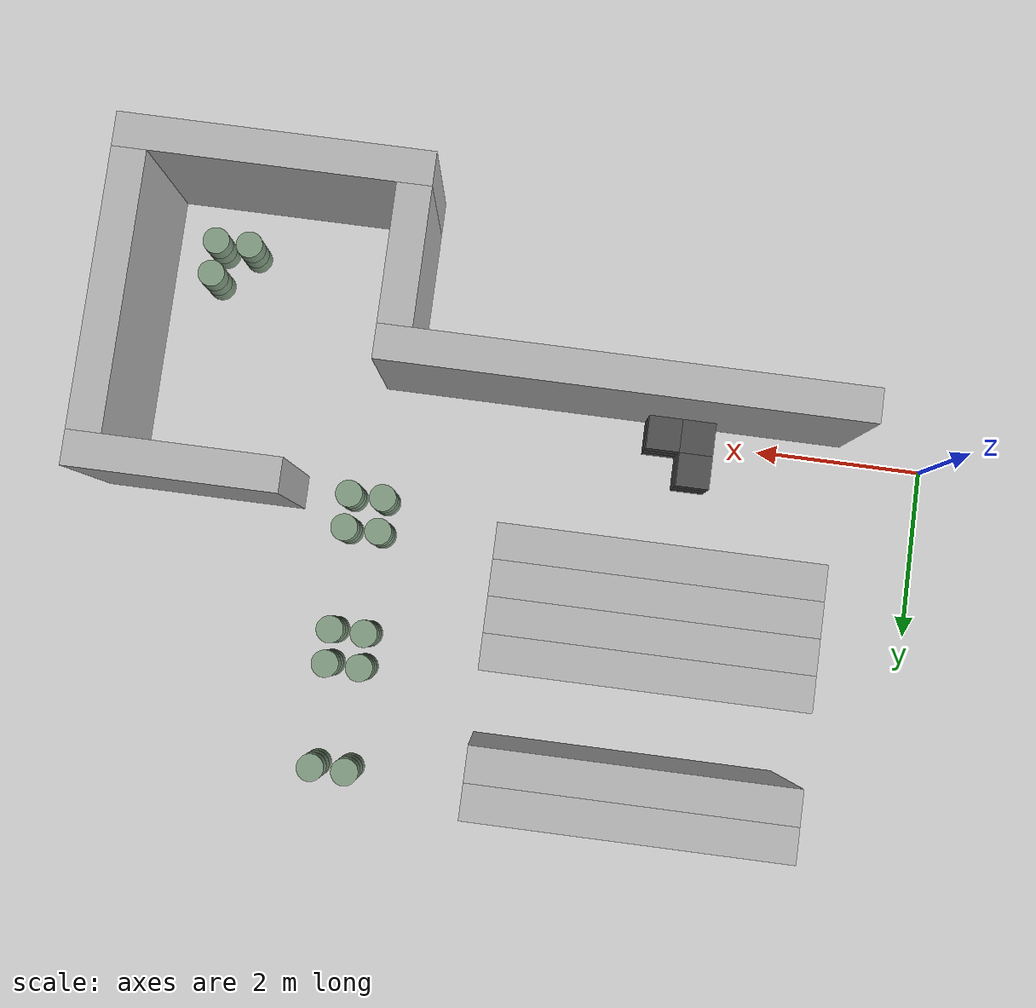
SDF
<sdf version="1.6">
 <world name="default">
  <include><uri>model://ground_plane</uri></include>
  <model name="wall_4">
   <pose frame="sim_world">6.4 -1.4 1.0 0 0 0</pose>
   <static>True</static>
   <link name="wall_4_link">
    <inertial>
     <mass>100</mass>
     <inertia>
      <ixx>0.166667</ixx>
      <ixy>0</ixy>
      <ixz>0</ixz>
      <iyy>0.166667</iyy>
      <iyz>0</iyz>
      <izz>0.166667</izz>
     </inertia>
    </inertial>
    <collision name="wall_4_collision">
     <geometry><box><size>0.4 1.6 2.0</size></box></geometry>
     <max_contacts>100</max_contacts>
    </collision>
    <visual name="wall_4_visual">
     <geometry><box><size>0.4 1.6 2.0</size></box></geometry>
     <material><ambient>0.7 0.7 0.7 1</ambient><diffuse>0.7 0.7 0.7 1</diffuse></material>
    </visual>
   </link>
  </model>
  <model name="wall_6">
   <pose frame="sim_world">9.6 -0.6 1.0 0 0 0</pose>
   <static>True</static>
   <link name="wall_6_link">
    <inertial>
     <mass>100</mass>
     <inertia>
      <ixx>0.166667</ixx>
      <ixy>0</ixy>
      <ixz>0</ixz>
      <iyy>0.166667</iyy>
      <iyz>0</iyz>
      <izz>0.166667</izz>
     </inertia>
    </inertial>
    <collision name="wall_6_collision">
     <geometry><box><size>0.4 3.2 2.0</size></box></geometry>
     <max_contacts>100</max_contacts>
    </collision>
    <visual name="wall_6_visual">
     <geometry><box><size>0.4 3.2 2.0</size></box></geometry>
     <material><ambient>0.7 0.7 0.7 1</ambient><diffuse>0.7 0.7 0.7 1</diffuse></material>
    </visual>
   </link>
  </model>
  <model name="wall_8">
   <pose frame="sim_world">8.0 -2.4 1.0 0 0 0</pose>
   <static>True</static>
   <link name="wall_8_link">
    <inertial>
     <mass>100</mass>
     <inertia>
      <ixx>0.166667</ixx>
      <ixy>0</ixy>
      <ixz>0</ixz>
      <iyy>0.166667</iyy>
      <iyz>0</iyz>
      <izz>0.166667</izz>
     </inertia>
    </inertial>
    <collision name="wall_8_collision">
     <geometry><box><size>3.6 0.4 2.0</size></box></geometry>
     <max_contacts>100</max_contacts>
    </collision>
    <visual name="wall_8_visual">
     <geometry><box><size>3.6 0.4 2.0</size></box></geometry>
     <material><ambient>0.7 0.7 0.7 1</ambient><diffuse>0.7 0.7 0.7 1</diffuse></material>
    </visual>
   </link>
  </model>
  <model name="wall_9">
   <pose frame="sim_world">3.8 -0.4 1.0 0 0 0</pose>
   <static>True</static>
   <link name="wall_9_link">
    <inertial>
     <mass>100</mass>
     <inertia>
      <ixx>0.166667</ixx>
      <ixy>0</ixy>
      <ixz>0</ixz>
      <iyy>0.166667</iyy>
      <iyz>0</iyz>
      <izz>0.166667</izz>
     </inertia>
    </inertial>
    <collision name="wall_9_collision">
     <geometry><box><size>5.6000000000000005 0.4 2.0</size></box></geometry>
     <max_contacts>100</max_contacts>
    </collision>
    <visual name="wall_9_visual">
     <geometry><box><size>5.6000000000000005 0.4 2.0</size></box></geometry>
     <material><ambient>0.7 0.7 0.7 1</ambient><diffuse>0.7 0.7 0.7 1</diffuse></material>
    </visual>
   </link>
  </model>
  <model name="wall_10">
   <pose frame="sim_world">8.6 1.2 1.0 0 0 0</pose>
   <static>True</static>
   <link name="wall_10_link">
    <inertial>
     <mass>100</mass>
     <inertia>
      <ixx>0.166667</ixx>
      <ixy>0</ixy>
      <ixz>0</ixz>
      <iyy>0.166667</iyy>
      <iyz>0</iyz>
      <izz>0.166667</izz>
     </inertia>
    </inertial>
    <collision name="wall_10_collision">
     <geometry><box><size>2.4000000000000004 0.4 2.0</size></box></geometry>
     <max_contacts>100</max_contacts>
    </collision>
    <visual name="wall_10_visual">
     <geometry><box><size>2.4000000000000004 0.4 2.0</size></box></geometry>
     <material><ambient>0.7 0.7 0.7 1</ambient><diffuse>0.7 0.7 0.7 1</diffuse></material>
    </visual>
   </link>
  </model>
  <model name="wall_11">
   <pose frame="sim_world">3.2 1.6 1.0 0 0 0</pose>
   <static>True</static>
   <link name="wall_11_link">
    <inertial>
     <mass>100</mass>
     <inertia>
      <ixx>0.166667</ixx>
      <ixy>0</ixy>
      <ixz>0</ixz>
      <iyy>0.166667</iyy>
      <iyz>0</iyz>
      <izz>0.166667</izz>
     </inertia>
    </inertial>
    <collision name="wall_11_collision">
     <geometry><box><size>3.6 0.4 2.0</size></box></geometry>
     <max_contacts>100</max_contacts>
    </collision>
    <visual name="wall_11_visual">
     <geometry><box><size>3.6 0.4 2.0</size></box></geometry>
     <material><ambient>0.7 0.7 0.7 1</ambient><diffuse>0.7 0.7 0.7 1</diffuse></material>
    </visual>
   </link>
  </model>
  <model name="wall_12">
   <pose frame="sim_world">3.2 2.0 1.0 0 0 0</pose>
   <static>True</static>
   <link name="wall_12_link">
    <inertial>
     <mass>100</mass>
     <inertia>
      <ixx>0.166667</ixx>
      <ixy>0</ixy>
      <ixz>0</ixz>
      <iyy>0.166667</iyy>
      <iyz>0</iyz>
      <izz>0.166667</izz>
     </inertia>
    </inertial>
    <collision name="wall_12_collision">
     <geometry><box><size>3.6 0.4 2.0</size></box></geometry>
     <max_contacts>100</max_contacts>
    </collision>
    <visual name="wall_12_visual">
     <geometry><box><size>3.6 0.4 2.0</size></box></geometry>
     <material><ambient>0.7 0.7 0.7 1</ambient><diffuse>0.7 0.7 0.7 1</diffuse></material>
    </visual>
   </link>
  </model>
  <model name="wall_13">
   <pose frame="sim_world">3.2 2.4 1.0 0 0 0</pose>
   <static>True</static>
   <link name="wall_13_link">
    <inertial>
     <mass>100</mass>
     <inertia>
      <ixx>0.166667</ixx>
      <ixy>0</ixy>
      <ixz>0</ixz>
      <iyy>0.166667</iyy>
      <iyz>0</iyz>
      <izz>0.166667</izz>
     </inertia>
    </inertial>
    <collision name="wall_13_collision">
     <geometry><box><size>3.6 0.4 2.0</size></box></geometry>
     <max_contacts>100</max_contacts>
    </collision>
    <visual name="wall_13_visual">
     <geometry><box><size>3.6 0.4 2.0</size></box></geometry>
     <material><ambient>0.7 0.7 0.7 1</ambient><diffuse>0.7 0.7 0.7 1</diffuse></material>
    </visual>
   </link>
  </model>
  <model name="wall_14">
   <pose frame="sim_world">3.2 2.8 1.0 0 0 0</pose>
   <static>True</static>
   <link name="wall_14_link">
    <inertial>
     <mass>100</mass>
     <inertia>
      <ixx>0.166667</ixx>
      <ixy>0</ixy>
      <ixz>0</ixz>
      <iyy>0.166667</iyy>
      <iyz>0</iyz>
      <izz>0.166667</izz>
     </inertia>
    </inertial>
    <collision name="wall_14_collision">
     <geometry><box><size>3.6 0.4 2.0</size></box></geometry>
     <max_contacts>100</max_contacts>
    </collision>
    <visual name="wall_14_visual">
     <geometry><box><size>3.6 0.4 2.0</size></box></geometry>
     <material><ambient>0.7 0.7 0.7 1</ambient><diffuse>0.7 0.7 0.7 1</diffuse></material>
    </visual>
   </link>
  </model>
  <model name="wall_15">
   <pose frame="sim_world">3.2 4.0 1.0 0 0 0</pose>
   <static>True</static>
   <link name="wall_15_link">
    <inertial>
     <mass>100</mass>
     <inertia>
      <ixx>0.166667</ixx>
      <ixy>0</ixy>
      <ixz>0</ixz>
      <iyy>0.166667</iyy>
      <iyz>0</iyz>
      <izz>0.166667</izz>
     </inertia>
    </inertial>
    <collision name="wall_15_collision">
     <geometry><box><size>3.6 0.4 2.0</size></box></geometry>
     <max_contacts>100</max_contacts>
    </collision>
    <visual name="wall_15_visual">
     <geometry><box><size>3.6 0.4 2.0</size></box></geometry>
     <material><ambient>0.7 0.7 0.7 1</ambient><diffuse>0.7 0.7 0.7 1</diffuse></material>
    </visual>
   </link>
  </model>
  <model name="wall_16">
   <pose frame="sim_world">3.2 4.4 1.0 0 0 0</pose>
   <static>True</static>
   <link name="wall_16_link">
    <inertial>
     <mass>100</mass>
     <inertia>
      <ixx>0.166667</ixx>
      <ixy>0</ixy>
      <ixz>0</ixz>
      <iyy>0.166667</iyy>
      <iyz>0</iyz>
      <izz>0.166667</izz>
     </inertia>
    </inertial>
    <collision name="wall_16_collision">
     <geometry><box><size>3.6 0.4 2.0</size></box></geometry>
     <max_contacts>100</max_contacts>
    </collision>
    <visual name="wall_16_visual">
     <geometry><box><size>3.6 0.4 2.0</size></box></geometry>
     <material><ambient>0.7 0.7 0.7 1</ambient><diffuse>0.7 0.7 0.7 1</diffuse></material>
    </visual>
   </link>
  </model>
  <model name="box_105">
   <pose frame="sim_world">2.8 0.0 0.1 0 -0 0</pose>
   <static>True</static>
   <link name="box_105_link">
    <inertial>
     <mass>100</mass>
     <inertia>
      <ixx>0.166667</ixx>
      <ixy>0</ixy>
      <ixz>0</ixz>
      <iyy>0.166667</iyy>
      <iyz>0</iyz>
      <izz>0.166667</izz>
     </inertia>
    </inertial>
    <collision name="box_105_collision">
     <geometry><box><size>0.4 0.4 0.2</size></box></geometry>
     <max_contacts>100</max_contacts>
    </collision>
    <visual name="box_105_visual">
     <geometry><box><size>0.4 0.4 0.2</size></box></geometry>
     <material><ambient>0.3 0.3 0.3 1</ambient><diffuse>0.3 0.3 0.3 1</diffuse></material>
    </visual>
   </link>
  </model>
  <model name="box_106">
   <pose frame="sim_world">2.8 0.0 0.3 0 -0 0</pose>
   <static>True</static>
   <link name="box_106_link">
    <inertial>
     <mass>100</mass>
     <inertia>
      <ixx>0.166667</ixx>
      <ixy>0</ixy>
      <ixz>0</ixz>
      <iyy>0.166667</iyy>
      <iyz>0</iyz>
      <izz>0.166667</izz>
     </inertia>
    </inertial>
    <collision name="box_106_collision">
     <geometry><box><size>0.4 0.4 0.2</size></box></geometry>
     <max_contacts>100</max_contacts>
    </collision>
    <visual name="box_106_visual">
     <geometry><box><size>0.4 0.4 0.2</size></box></geometry>
     <material><ambient>0.3 0.3 0.3 1</ambient><diffuse>0.3 0.3 0.3 1</diffuse></material>
    </visual>
   </link>
  </model>
  <model name="box_107">
   <pose frame="sim_world">2.8 0.0 0.5 0 -0 0</pose>
   <static>True</static>
   <link name="box_107_link">
    <inertial>
     <mass>100</mass>
     <inertia>
      <ixx>0.166667</ixx>
      <ixy>0</ixy>
      <ixz>0</ixz>
      <iyy>0.166667</iyy>
      <iyz>0</iyz>
      <izz>0.166667</izz>
     </inertia>
    </inertial>
    <collision name="box_107_collision">
     <geometry><box><size>0.4 0.4 0.2</size></box></geometry>
     <max_contacts>100</max_contacts>
    </collision>
    <visual name="box_107_visual">
     <geometry><box><size>0.4 0.4 0.2</size></box></geometry>
     <material><ambient>0.3 0.3 0.3 1</ambient><diffuse>0.3 0.3 0.3 1</diffuse></material>
    </visual>
   </link>
  </model>
  <model name="box_108">
   <pose frame="sim_world">2.8 0.4 0.1 0 -0 0</pose>
   <static>True</static>
   <link name="box_108_link">
    <inertial>
     <mass>100</mass>
     <inertia>
      <ixx>0.166667</ixx>
      <ixy>0</ixy>
      <ixz>0</ixz>
      <iyy>0.166667</iyy>
      <iyz>0</iyz>
      <izz>0.166667</izz>
     </inertia>
    </inertial>
    <collision name="box_108_collision">
     <geometry><box><size>0.4 0.4 0.2</size></box></geometry>
     <max_contacts>100</max_contacts>
    </collision>
    <visual name="box_108_visual">
     <geometry><box><size>0.4 0.4 0.2</size></box></geometry>
     <material><ambient>0.3 0.3 0.3 1</ambient><diffuse>0.3 0.3 0.3 1</diffuse></material>
    </visual>
   </link>
  </model>
  <model name="box_109">
   <pose frame="sim_world">2.8 0.4 0.3 0 -0 0</pose>
   <static>True</static>
   <link name="box_109_link">
    <inertial>
     <mass>100</mass>
     <inertia>
      <ixx>0.166667</ixx>
      <ixy>0</ixy>
      <ixz>0</ixz>
      <iyy>0.166667</iyy>
      <iyz>0</iyz>
      <izz>0.166667</izz>
     </inertia>
    </inertial>
    <collision name="box_109_collision">
     <geometry><box><size>0.4 0.4 0.2</size></box></geometry>
     <max_contacts>100</max_contacts>
    </collision>
    <visual name="box_109_visual">
     <geometry><box><size>0.4 0.4 0.2</size></box></geometry>
     <material><ambient>0.3 0.3 0.3 1</ambient><diffuse>0.3 0.3 0.3 1</diffuse></material>
    </visual>
   </link>
  </model>
  <model name="box_110">
   <pose frame="sim_world">2.8 0.4 0.5 0 -0 0</pose>
   <static>True</static>
   <link name="box_110_link">
    <inertial>
     <mass>100</mass>
     <inertia>
      <ixx>0.166667</ixx>
      <ixy>0</ixy>
      <ixz>0</ixz>
      <iyy>0.166667</iyy>
      <iyz>0</iyz>
      <izz>0.166667</izz>
     </inertia>
    </inertial>
    <collision name="box_110_collision">
     <geometry><box><size>0.4 0.4 0.2</size></box></geometry>
     <max_contacts>100</max_contacts>
    </collision>
    <visual name="box_110_visual">
     <geometry><box><size>0.4 0.4 0.2</size></box></geometry>
     <material><ambient>0.3 0.3 0.3 1</ambient><diffuse>0.3 0.3 0.3 1</diffuse></material>
    </visual>
   </link>
  </model>
  <model name="box_123">
   <pose frame="sim_world">3.2 0.0 0.1 0 -0 0</pose>
   <static>True</static>
   <link name="box_123_link">
    <inertial>
     <mass>100</mass>
     <inertia>
      <ixx>0.166667</ixx>
      <ixy>0</ixy>
      <ixz>0</ixz>
      <iyy>0.166667</iyy>
      <iyz>0</iyz>
      <izz>0.166667</izz>
     </inertia>
    </inertial>
    <collision name="box_123_collision">
     <geometry><box><size>0.4 0.4 0.2</size></box></geometry>
     <max_contacts>100</max_contacts>
    </collision>
    <visual name="box_123_visual">
     <geometry><box><size>0.4 0.4 0.2</size></box></geometry>
     <material><ambient>0.3 0.3 0.3 1</ambient><diffuse>0.3 0.3 0.3 1</diffuse></material>
    </visual>
   </link>
  </model>
  <model name="box_124">
   <pose frame="sim_world">3.2 0.0 0.3 0 -0 0</pose>
   <static>True</static>
   <link name="box_124_link">
    <inertial>
     <mass>100</mass>
     <inertia>
      <ixx>0.166667</ixx>
      <ixy>0</ixy>
      <ixz>0</ixz>
      <iyy>0.166667</iyy>
      <iyz>0</iyz>
      <izz>0.166667</izz>
     </inertia>
    </inertial>
    <collision name="box_124_collision">
     <geometry><box><size>0.4 0.4 0.2</size></box></geometry>
     <max_contacts>100</max_contacts>
    </collision>
    <visual name="box_124_visual">
     <geometry><box><size>0.4 0.4 0.2</size></box></geometry>
     <material><ambient>0.3 0.3 0.3 1</ambient><diffuse>0.3 0.3 0.3 1</diffuse></material>
    </visual>
   </link>
  </model>
  <model name="box_125">
   <pose frame="sim_world">3.2 0.0 0.5 0 -0 0</pose>
   <static>True</static>
   <link name="box_125_link">
    <inertial>
     <mass>100</mass>
     <inertia>
      <ixx>0.166667</ixx>
      <ixy>0</ixy>
      <ixz>0</ixz>
      <iyy>0.166667</iyy>
      <iyz>0</iyz>
      <izz>0.166667</izz>
     </inertia>
    </inertial>
    <collision name="box_125_collision">
     <geometry><box><size>0.4 0.4 0.2</size></box></geometry>
     <max_contacts>100</max_contacts>
    </collision>
    <visual name="box_125_visual">
     <geometry><box><size>0.4 0.4 0.2</size></box></geometry>
     <material><ambient>0.3 0.3 0.3 1</ambient><diffuse>0.3 0.3 0.3 1</diffuse></material>
    </visual>
   </link>
  </model>
  <model name="cylinder_6">
   <pose frame="sim_world">6.4 1.2 0.12 0 -0 0</pose>
   <static>True</static>
   <link name="cylinder_6_link">
    <inertial>
     <mass>100</mass>
     <inertia><ixx>0.145833</ixx><ixy>0</ixy><ixz>0</ixz><iyy>0.145833</iyy><iyz>0</iyz><izz>0.125</izz></inertia>
    </inertial>
    <collision name="cylinder_6_collision">
     <geometry><cylinder><length>0.24</length><radius>0.16</radius></cylinder></geometry>
     <max_contacts>100</max_contacts>
    </collision>
    <visual name="cylinder_6_visual">
     <geometry><cylinder><length>0.24</length><radius>0.16</radius></cylinder></geometry>
     <material><ambient>0.5 0.6 0.5 1</ambient><diffuse>0.5 0.6 0.5 1</diffuse></material>
    </visual>
   </link>
  </model>
  <model name="cylinder_7">
   <pose frame="sim_world">6.4 1.2 0.36 0 -0 0</pose>
   <static>True</static>
   <link name="cylinder_7_link">
    <inertial>
     <mass>100</mass>
     <inertia><ixx>0.145833</ixx><ixy>0</ixy><ixz>0</ixz><iyy>0.145833</iyy><iyz>0</iyz><izz>0.125</izz></inertia>
    </inertial>
    <collision name="cylinder_7_collision">
     <geometry><cylinder><length>0.24</length><radius>0.16</radius></cylinder></geometry>
     <max_contacts>100</max_contacts>
    </collision>
    <visual name="cylinder_7_visual">
     <geometry><cylinder><length>0.24</length><radius>0.16</radius></cylinder></geometry>
     <material><ambient>0.5 0.6 0.5 1</ambient><diffuse>0.5 0.6 0.5 1</diffuse></material>
    </visual>
   </link>
  </model>
  <model name="cylinder_8">
   <pose frame="sim_world">6.4 1.2 0.6 0 -0 0</pose>
   <static>True</static>
   <link name="cylinder_8_link">
    <inertial>
     <mass>100</mass>
     <inertia><ixx>0.145833</ixx><ixy>0</ixy><ixz>0</ixz><iyy>0.145833</iyy><iyz>0</iyz><izz>0.125</izz></inertia>
    </inertial>
    <collision name="cylinder_8_collision">
     <geometry><cylinder><length>0.24</length><radius>0.16</radius></cylinder></geometry>
     <max_contacts>100</max_contacts>
    </collision>
    <visual name="cylinder_8_visual">
     <geometry><cylinder><length>0.24</length><radius>0.16</radius></cylinder></geometry>
     <material><ambient>0.5 0.6 0.5 1</ambient><diffuse>0.5 0.6 0.5 1</diffuse></material>
    </visual>
   </link>
  </model>
  <model name="cylinder_9">
   <pose frame="sim_world">6.4 1.6 0.12 0 -0 0</pose>
   <static>True</static>
   <link name="cylinder_9_link">
    <inertial>
     <mass>100</mass>
     <inertia><ixx>0.145833</ixx><ixy>0</ixy><ixz>0</ixz><iyy>0.145833</iyy><iyz>0</iyz><izz>0.125</izz></inertia>
    </inertial>
    <collision name="cylinder_9_collision">
     <geometry><cylinder><length>0.24</length><radius>0.16</radius></cylinder></geometry>
     <max_contacts>100</max_contacts>
    </collision>
    <visual name="cylinder_9_visual">
     <geometry><cylinder><length>0.24</length><radius>0.16</radius></cylinder></geometry>
     <material><ambient>0.5 0.6 0.5 1</ambient><diffuse>0.5 0.6 0.5 1</diffuse></material>
    </visual>
   </link>
  </model>
  <model name="cylinder_10">
   <pose frame="sim_world">6.4 1.6 0.36 0 -0 0</pose>
   <static>True</static>
   <link name="cylinder_10_link">
    <inertial>
     <mass>100</mass>
     <inertia><ixx>0.145833</ixx><ixy>0</ixy><ixz>0</ixz><iyy>0.145833</iyy><iyz>0</iyz><izz>0.125</izz></inertia>
    </inertial>
    <collision name="cylinder_10_collision">
     <geometry><cylinder><length>0.24</length><radius>0.16</radius></cylinder></geometry>
     <max_contacts>100</max_contacts>
    </collision>
    <visual name="cylinder_10_visual">
     <geometry><cylinder><length>0.24</length><radius>0.16</radius></cylinder></geometry>
     <material><ambient>0.5 0.6 0.5 1</ambient><diffuse>0.5 0.6 0.5 1</diffuse></material>
    </visual>
   </link>
  </model>
  <model name="cylinder_11">
   <pose frame="sim_world">6.4 1.6 0.6 0 -0 0</pose>
   <static>True</static>
   <link name="cylinder_11_link">
    <inertial>
     <mass>100</mass>
     <inertia><ixx>0.145833</ixx><ixy>0</ixy><ixz>0</ixz><iyy>0.145833</iyy><iyz>0</iyz><izz>0.125</izz></inertia>
    </inertial>
    <collision name="cylinder_11_collision">
     <geometry><cylinder><length>0.24</length><radius>0.16</radius></cylinder></geometry>
     <max_contacts>100</max_contacts>
    </collision>
    <visual name="cylinder_11_visual">
     <geometry><cylinder><length>0.24</length><radius>0.16</radius></cylinder></geometry>
     <material><ambient>0.5 0.6 0.5 1</ambient><diffuse>0.5 0.6 0.5 1</diffuse></material>
    </visual>
   </link>
  </model>
  <model name="cylinder_12">
   <pose frame="sim_world">6.4 2.8 0.12 0 -0 0</pose>
   <static>True</static>
   <link name="cylinder_12_link">
    <inertial>
     <mass>100</mass>
     <inertia><ixx>0.145833</ixx><ixy>0</ixy><ixz>0</ixz><iyy>0.145833</iyy><iyz>0</iyz><izz>0.125</izz></inertia>
    </inertial>
    <collision name="cylinder_12_collision">
     <geometry><cylinder><length>0.24</length><radius>0.16</radius></cylinder></geometry>
     <max_contacts>100</max_contacts>
    </collision>
    <visual name="cylinder_12_visual">
     <geometry><cylinder><length>0.24</length><radius>0.16</radius></cylinder></geometry>
     <material><ambient>0.5 0.6 0.5 1</ambient><diffuse>0.5 0.6 0.5 1</diffuse></material>
    </visual>
   </link>
  </model>
  <model name="cylinder_13">
   <pose frame="sim_world">6.4 2.8 0.36 0 -0 0</pose>
   <static>True</static>
   <link name="cylinder_13_link">
    <inertial>
     <mass>100</mass>
     <inertia><ixx>0.145833</ixx><ixy>0</ixy><ixz>0</ixz><iyy>0.145833</iyy><iyz>0</iyz><izz>0.125</izz></inertia>
    </inertial>
    <collision name="cylinder_13_collision">
     <geometry><cylinder><length>0.24</length><radius>0.16</radius></cylinder></geometry>
     <max_contacts>100</max_contacts>
    </collision>
    <visual name="cylinder_13_visual">
     <geometry><cylinder><length>0.24</length><radius>0.16</radius></cylinder></geometry>
     <material><ambient>0.5 0.6 0.5 1</ambient><diffuse>0.5 0.6 0.5 1</diffuse></material>
    </visual>
   </link>
  </model>
  <model name="cylinder_14">
   <pose frame="sim_world">6.4 2.8 0.6 0 -0 0</pose>
   <static>True</static>
   <link name="cylinder_14_link">
    <inertial>
     <mass>100</mass>
     <inertia><ixx>0.145833</ixx><ixy>0</ixy><ixz>0</ixz><iyy>0.145833</iyy><iyz>0</iyz><izz>0.125</izz></inertia>
    </inertial>
    <collision name="cylinder_14_collision">
     <geometry><cylinder><length>0.24</length><radius>0.16</radius></cylinder></geometry>
     <max_contacts>100</max_contacts>
    </collision>
    <visual name="cylinder_14_visual">
     <geometry><cylinder><length>0.24</length><radius>0.16</radius></cylinder></geometry>
     <material><ambient>0.5 0.6 0.5 1</ambient><diffuse>0.5 0.6 0.5 1</diffuse></material>
    </visual>
   </link>
  </model>
  <model name="cylinder_15">
   <pose frame="sim_world">6.4 3.2 0.12 0 -0 0</pose>
   <static>True</static>
   <link name="cylinder_15_link">
    <inertial>
     <mass>100</mass>
     <inertia><ixx>0.145833</ixx><ixy>0</ixy><ixz>0</ixz><iyy>0.145833</iyy><iyz>0</iyz><izz>0.125</izz></inertia>
    </inertial>
    <collision name="cylinder_15_collision">
     <geometry><cylinder><length>0.24</length><radius>0.16</radius></cylinder></geometry>
     <max_contacts>100</max_contacts>
    </collision>
    <visual name="cylinder_15_visual">
     <geometry><cylinder><length>0.24</length><radius>0.16</radius></cylinder></geometry>
     <material><ambient>0.5 0.6 0.5 1</ambient><diffuse>0.5 0.6 0.5 1</diffuse></material>
    </visual>
   </link>
  </model>
  <model name="cylinder_16">
   <pose frame="sim_world">6.4 3.2 0.36 0 -0 0</pose>
   <static>True</static>
   <link name="cylinder_16_link">
    <inertial>
     <mass>100</mass>
     <inertia><ixx>0.145833</ixx><ixy>0</ixy><ixz>0</ixz><iyy>0.145833</iyy><iyz>0</iyz><izz>0.125</izz></inertia>
    </inertial>
    <collision name="cylinder_16_collision">
     <geometry><cylinder><length>0.24</length><radius>0.16</radius></cylinder></geometry>
     <max_contacts>100</max_contacts>
    </collision>
    <visual name="cylinder_16_visual">
     <geometry><cylinder><length>0.24</length><radius>0.16</radius></cylinder></geometry>
     <material><ambient>0.5 0.6 0.5 1</ambient><diffuse>0.5 0.6 0.5 1</diffuse></material>
    </visual>
   </link>
  </model>
  <model name="cylinder_17">
   <pose frame="sim_world">6.4 3.2 0.6 0 -0 0</pose>
   <static>True</static>
   <link name="cylinder_17_link">
    <inertial>
     <mass>100</mass>
     <inertia><ixx>0.145833</ixx><ixy>0</ixy><ixz>0</ixz><iyy>0.145833</iyy><iyz>0</iyz><izz>0.125</izz></inertia>
    </inertial>
    <collision name="cylinder_17_collision">
     <geometry><cylinder><length>0.24</length><radius>0.16</radius></cylinder></geometry>
     <max_contacts>100</max_contacts>
    </collision>
    <visual name="cylinder_17_visual">
     <geometry><cylinder><length>0.24</length><radius>0.16</radius></cylinder></geometry>
     <material><ambient>0.5 0.6 0.5 1</ambient><diffuse>0.5 0.6 0.5 1</diffuse></material>
    </visual>
   </link>
  </model>
  <model name="cylinder_18">
   <pose frame="sim_world">6.4 4.4 0.12 0 -0 0</pose>
   <static>True</static>
   <link name="cylinder_18_link">
    <inertial>
     <mass>100</mass>
     <inertia><ixx>0.145833</ixx><ixy>0</ixy><ixz>0</ixz><iyy>0.145833</iyy><iyz>0</iyz><izz>0.125</izz></inertia>
    </inertial>
    <collision name="cylinder_18_collision">
     <geometry><cylinder><length>0.24</length><radius>0.16</radius></cylinder></geometry>
     <max_contacts>100</max_contacts>
    </collision>
    <visual name="cylinder_18_visual">
     <geometry><cylinder><length>0.24</length><radius>0.16</radius></cylinder></geometry>
     <material><ambient>0.5 0.6 0.5 1</ambient><diffuse>0.5 0.6 0.5 1</diffuse></material>
    </visual>
   </link>
  </model>
  <model name="cylinder_19">
   <pose frame="sim_world">6.4 4.4 0.36 0 -0 0</pose>
   <static>True</static>
   <link name="cylinder_19_link">
    <inertial>
     <mass>100</mass>
     <inertia><ixx>0.145833</ixx><ixy>0</ixy><ixz>0</ixz><iyy>0.145833</iyy><iyz>0</iyz><izz>0.125</izz></inertia>
    </inertial>
    <collision name="cylinder_19_collision">
     <geometry><cylinder><length>0.24</length><radius>0.16</radius></cylinder></geometry>
     <max_contacts>100</max_contacts>
    </collision>
    <visual name="cylinder_19_visual">
     <geometry><cylinder><length>0.24</length><radius>0.16</radius></cylinder></geometry>
     <material><ambient>0.5 0.6 0.5 1</ambient><diffuse>0.5 0.6 0.5 1</diffuse></material>
    </visual>
   </link>
  </model>
  <model name="cylinder_20">
   <pose frame="sim_world">6.4 4.4 0.6 0 -0 0</pose>
   <static>True</static>
   <link name="cylinder_20_link">
    <inertial>
     <mass>100</mass>
     <inertia><ixx>0.145833</ixx><ixy>0</ixy><ixz>0</ixz><iyy>0.145833</iyy><iyz>0</iyz><izz>0.125</izz></inertia>
    </inertial>
    <collision name="cylinder_20_collision">
     <geometry><cylinder><length>0.24</length><radius>0.16</radius></cylinder></geometry>
     <max_contacts>100</max_contacts>
    </collision>
    <visual name="cylinder_20_visual">
     <geometry><cylinder><length>0.24</length><radius>0.16</radius></cylinder></geometry>
     <material><ambient>0.5 0.6 0.5 1</ambient><diffuse>0.5 0.6 0.5 1</diffuse></material>
    </visual>
   </link>
  </model>
  <model name="cylinder_36">
   <pose frame="sim_world">6.8 1.2 0.12 0 -0 0</pose>
   <static>True</static>
   <link name="cylinder_36_link">
    <inertial>
     <mass>100</mass>
     <inertia><ixx>0.145833</ixx><ixy>0</ixy><ixz>0</ixz><iyy>0.145833</iyy><iyz>0</iyz><izz>0.125</izz></inertia>
    </inertial>
    <collision name="cylinder_36_collision">
     <geometry><cylinder><length>0.24</length><radius>0.16</radius></cylinder></geometry>
     <max_contacts>100</max_contacts>
    </collision>
    <visual name="cylinder_36_visual">
     <geometry><cylinder><length>0.24</length><radius>0.16</radius></cylinder></geometry>
     <material><ambient>0.5 0.6 0.5 1</ambient><diffuse>0.5 0.6 0.5 1</diffuse></material>
    </visual>
   </link>
  </model>
  <model name="cylinder_37">
   <pose frame="sim_world">6.8 1.2 0.36 0 -0 0</pose>
   <static>True</static>
   <link name="cylinder_37_link">
    <inertial>
     <mass>100</mass>
     <inertia><ixx>0.145833</ixx><ixy>0</ixy><ixz>0</ixz><iyy>0.145833</iyy><iyz>0</iyz><izz>0.125</izz></inertia>
    </inertial>
    <collision name="cylinder_37_collision">
     <geometry><cylinder><length>0.24</length><radius>0.16</radius></cylinder></geometry>
     <max_contacts>100</max_contacts>
    </collision>
    <visual name="cylinder_37_visual">
     <geometry><cylinder><length>0.24</length><radius>0.16</radius></cylinder></geometry>
     <material><ambient>0.5 0.6 0.5 1</ambient><diffuse>0.5 0.6 0.5 1</diffuse></material>
    </visual>
   </link>
  </model>
  <model name="cylinder_38">
   <pose frame="sim_world">6.8 1.2 0.6 0 -0 0</pose>
   <static>True</static>
   <link name="cylinder_38_link">
    <inertial>
     <mass>100</mass>
     <inertia><ixx>0.145833</ixx><ixy>0</ixy><ixz>0</ixz><iyy>0.145833</iyy><iyz>0</iyz><izz>0.125</izz></inertia>
    </inertial>
    <collision name="cylinder_38_collision">
     <geometry><cylinder><length>0.24</length><radius>0.16</radius></cylinder></geometry>
     <max_contacts>100</max_contacts>
    </collision>
    <visual name="cylinder_38_visual">
     <geometry><cylinder><length>0.24</length><radius>0.16</radius></cylinder></geometry>
     <material><ambient>0.5 0.6 0.5 1</ambient><diffuse>0.5 0.6 0.5 1</diffuse></material>
    </visual>
   </link>
  </model>
  <model name="cylinder_39">
   <pose frame="sim_world">6.8 1.6 0.12 0 -0 0</pose>
   <static>True</static>
   <link name="cylinder_39_link">
    <inertial>
     <mass>100</mass>
     <inertia><ixx>0.145833</ixx><ixy>0</ixy><ixz>0</ixz><iyy>0.145833</iyy><iyz>0</iyz><izz>0.125</izz></inertia>
    </inertial>
    <collision name="cylinder_39_collision">
     <geometry><cylinder><length>0.24</length><radius>0.16</radius></cylinder></geometry>
     <max_contacts>100</max_contacts>
    </collision>
    <visual name="cylinder_39_visual">
     <geometry><cylinder><length>0.24</length><radius>0.16</radius></cylinder></geometry>
     <material><ambient>0.5 0.6 0.5 1</ambient><diffuse>0.5 0.6 0.5 1</diffuse></material>
    </visual>
   </link>
  </model>
  <model name="cylinder_40">
   <pose frame="sim_world">6.8 1.6 0.36 0 -0 0</pose>
   <static>True</static>
   <link name="cylinder_40_link">
    <inertial>
     <mass>100</mass>
     <inertia><ixx>0.145833</ixx><ixy>0</ixy><ixz>0</ixz><iyy>0.145833</iyy><iyz>0</iyz><izz>0.125</izz></inertia>
    </inertial>
    <collision name="cylinder_40_collision">
     <geometry><cylinder><length>0.24</length><radius>0.16</radius></cylinder></geometry>
     <max_contacts>100</max_contacts>
    </collision>
    <visual name="cylinder_40_visual">
     <geometry><cylinder><length>0.24</length><radius>0.16</radius></cylinder></geometry>
     <material><ambient>0.5 0.6 0.5 1</ambient><diffuse>0.5 0.6 0.5 1</diffuse></material>
    </visual>
   </link>
  </model>
  <model name="cylinder_41">
   <pose frame="sim_world">6.8 1.6 0.6 0 -0 0</pose>
   <static>True</static>
   <link name="cylinder_41_link">
    <inertial>
     <mass>100</mass>
     <inertia><ixx>0.145833</ixx><ixy>0</ixy><ixz>0</ixz><iyy>0.145833</iyy><iyz>0</iyz><izz>0.125</izz></inertia>
    </inertial>
    <collision name="cylinder_41_collision">
     <geometry><cylinder><length>0.24</length><radius>0.16</radius></cylinder></geometry>
     <max_contacts>100</max_contacts>
    </collision>
    <visual name="cylinder_41_visual">
     <geometry><cylinder><length>0.24</length><radius>0.16</radius></cylinder></geometry>
     <material><ambient>0.5 0.6 0.5 1</ambient><diffuse>0.5 0.6 0.5 1</diffuse></material>
    </visual>
   </link>
  </model>
  <model name="cylinder_42">
   <pose frame="sim_world">6.8 2.8 0.12 0 -0 0</pose>
   <static>True</static>
   <link name="cylinder_42_link">
    <inertial>
     <mass>100</mass>
     <inertia><ixx>0.145833</ixx><ixy>0</ixy><ixz>0</ixz><iyy>0.145833</iyy><iyz>0</iyz><izz>0.125</izz></inertia>
    </inertial>
    <collision name="cylinder_42_collision">
     <geometry><cylinder><length>0.24</length><radius>0.16</radius></cylinder></geometry>
     <max_contacts>100</max_contacts>
    </collision>
    <visual name="cylinder_42_visual">
     <geometry><cylinder><length>0.24</length><radius>0.16</radius></cylinder></geometry>
     <material><ambient>0.5 0.6 0.5 1</ambient><diffuse>0.5 0.6 0.5 1</diffuse></material>
    </visual>
   </link>
  </model>
  <model name="cylinder_43">
   <pose frame="sim_world">6.8 2.8 0.36 0 -0 0</pose>
   <static>True</static>
   <link name="cylinder_43_link">
    <inertial>
     <mass>100</mass>
     <inertia><ixx>0.145833</ixx><ixy>0</ixy><ixz>0</ixz><iyy>0.145833</iyy><iyz>0</iyz><izz>0.125</izz></inertia>
    </inertial>
    <collision name="cylinder_43_collision">
     <geometry><cylinder><length>0.24</length><radius>0.16</radius></cylinder></geometry>
     <max_contacts>100</max_contacts>
    </collision>
    <visual name="cylinder_43_visual">
     <geometry><cylinder><length>0.24</length><radius>0.16</radius></cylinder></geometry>
     <material><ambient>0.5 0.6 0.5 1</ambient><diffuse>0.5 0.6 0.5 1</diffuse></material>
    </visual>
   </link>
  </model>
  <model name="cylinder_44">
   <pose frame="sim_world">6.8 2.8 0.6 0 -0 0</pose>
   <static>True</static>
   <link name="cylinder_44_link">
    <inertial>
     <mass>100</mass>
     <inertia><ixx>0.145833</ixx><ixy>0</ixy><ixz>0</ixz><iyy>0.145833</iyy><iyz>0</iyz><izz>0.125</izz></inertia>
    </inertial>
    <collision name="cylinder_44_collision">
     <geometry><cylinder><length>0.24</length><radius>0.16</radius></cylinder></geometry>
     <max_contacts>100</max_contacts>
    </collision>
    <visual name="cylinder_44_visual">
     <geometry><cylinder><length>0.24</length><radius>0.16</radius></cylinder></geometry>
     <material><ambient>0.5 0.6 0.5 1</ambient><diffuse>0.5 0.6 0.5 1</diffuse></material>
    </visual>
   </link>
  </model>
  <model name="cylinder_45">
   <pose frame="sim_world">6.8 3.2 0.12 0 -0 0</pose>
   <static>True</static>
   <link name="cylinder_45_link">
    <inertial>
     <mass>100</mass>
     <inertia><ixx>0.145833</ixx><ixy>0</ixy><ixz>0</ixz><iyy>0.145833</iyy><iyz>0</iyz><izz>0.125</izz></inertia>
    </inertial>
    <collision name="cylinder_45_collision">
     <geometry><cylinder><length>0.24</length><radius>0.16</radius></cylinder></geometry>
     <max_contacts>100</max_contacts>
    </collision>
    <visual name="cylinder_45_visual">
     <geometry><cylinder><length>0.24</length><radius>0.16</radius></cylinder></geometry>
     <material><ambient>0.5 0.6 0.5 1</ambient><diffuse>0.5 0.6 0.5 1</diffuse></material>
    </visual>
   </link>
  </model>
  <model name="cylinder_46">
   <pose frame="sim_world">6.8 3.2 0.36 0 -0 0</pose>
   <static>True</static>
   <link name="cylinder_46_link">
    <inertial>
     <mass>100</mass>
     <inertia><ixx>0.145833</ixx><ixy>0</ixy><ixz>0</ixz><iyy>0.145833</iyy><iyz>0</iyz><izz>0.125</izz></inertia>
    </inertial>
    <collision name="cylinder_46_collision">
     <geometry><cylinder><length>0.24</length><radius>0.16</radius></cylinder></geometry>
     <max_contacts>100</max_contacts>
    </collision>
    <visual name="cylinder_46_visual">
     <geometry><cylinder><length>0.24</length><radius>0.16</radius></cylinder></geometry>
     <material><ambient>0.5 0.6 0.5 1</ambient><diffuse>0.5 0.6 0.5 1</diffuse></material>
    </visual>
   </link>
  </model>
  <model name="cylinder_47">
   <pose frame="sim_world">6.8 3.2 0.6 0 -0 0</pose>
   <static>True</static>
   <link name="cylinder_47_link">
    <inertial>
     <mass>100</mass>
     <inertia><ixx>0.145833</ixx><ixy>0</ixy><ixz>0</ixz><iyy>0.145833</iyy><iyz>0</iyz><izz>0.125</izz></inertia>
    </inertial>
    <collision name="cylinder_47_collision">
     <geometry><cylinder><length>0.24</length><radius>0.16</radius></cylinder></geometry>
     <max_contacts>100</max_contacts>
    </collision>
    <visual name="cylinder_47_visual">
     <geometry><cylinder><length>0.24</length><radius>0.16</radius></cylinder></geometry>
     <material><ambient>0.5 0.6 0.5 1</ambient><diffuse>0.5 0.6 0.5 1</diffuse></material>
    </visual>
   </link>
  </model>
  <model name="cylinder_48">
   <pose frame="sim_world">6.8 4.4 0.12 0 -0 0</pose>
   <static>True</static>
   <link name="cylinder_48_link">
    <inertial>
     <mass>100</mass>
     <inertia><ixx>0.145833</ixx><ixy>0</ixy><ixz>0</ixz><iyy>0.145833</iyy><iyz>0</iyz><izz>0.125</izz></inertia>
    </inertial>
    <collision name="cylinder_48_collision">
     <geometry><cylinder><length>0.24</length><radius>0.16</radius></cylinder></geometry>
     <max_contacts>100</max_contacts>
    </collision>
    <visual name="cylinder_48_visual">
     <geometry><cylinder><length>0.24</length><radius>0.16</radius></cylinder></geometry>
     <material><ambient>0.5 0.6 0.5 1</ambient><diffuse>0.5 0.6 0.5 1</diffuse></material>
    </visual>
   </link>
  </model>
  <model name="cylinder_49">
   <pose frame="sim_world">6.8 4.4 0.36 0 -0 0</pose>
   <static>True</static>
   <link name="cylinder_49_link">
    <inertial>
     <mass>100</mass>
     <inertia><ixx>0.145833</ixx><ixy>0</ixy><ixz>0</ixz><iyy>0.145833</iyy><iyz>0</iyz><izz>0.125</izz></inertia>
    </inertial>
    <collision name="cylinder_49_collision">
     <geometry><cylinder><length>0.24</length><radius>0.16</radius></cylinder></geometry>
     <max_contacts>100</max_contacts>
    </collision>
    <visual name="cylinder_49_visual">
     <geometry><cylinder><length>0.24</length><radius>0.16</radius></cylinder></geometry>
     <material><ambient>0.5 0.6 0.5 1</ambient><diffuse>0.5 0.6 0.5 1</diffuse></material>
    </visual>
   </link>
  </model>
  <model name="cylinder_50">
   <pose frame="sim_world">6.8 4.4 0.6 0 -0 0</pose>
   <static>True</static>
   <link name="cylinder_50_link">
    <inertial>
     <mass>100</mass>
     <inertia><ixx>0.145833</ixx><ixy>0</ixy><ixz>0</ixz><iyy>0.145833</iyy><iyz>0</iyz><izz>0.125</izz></inertia>
    </inertial>
    <collision name="cylinder_50_collision">
     <geometry><cylinder><length>0.24</length><radius>0.16</radius></cylinder></geometry>
     <max_contacts>100</max_contacts>
    </collision>
    <visual name="cylinder_50_visual">
     <geometry><cylinder><length>0.24</length><radius>0.16</radius></cylinder></geometry>
     <material><ambient>0.5 0.6 0.5 1</ambient><diffuse>0.5 0.6 0.5 1</diffuse></material>
    </visual>
   </link>
  </model>
  <model name="cylinder_66">
   <pose frame="sim_world">8.4 -1.6 0.12 0 -0 0</pose>
   <static>True</static>
   <link name="cylinder_66_link">
    <inertial>
     <mass>100</mass>
     <inertia><ixx>0.145833</ixx><ixy>0</ixy><ixz>0</ixz><iyy>0.145833</iyy><iyz>0</iyz><izz>0.125</izz></inertia>
    </inertial>
    <collision name="cylinder_66_collision">
     <geometry><cylinder><length>0.24</length><radius>0.16</radius></cylinder></geometry>
     <max_contacts>100</max_contacts>
    </collision>
    <visual name="cylinder_66_visual">
     <geometry><cylinder><length>0.24</length><radius>0.16</radius></cylinder></geometry>
     <material><ambient>0.5 0.6 0.5 1</ambient><diffuse>0.5 0.6 0.5 1</diffuse></material>
    </visual>
   </link>
  </model>
  <model name="cylinder_67">
   <pose frame="sim_world">8.4 -1.6 0.36 0 -0 0</pose>
   <static>True</static>
   <link name="cylinder_67_link">
    <inertial>
     <mass>100</mass>
     <inertia><ixx>0.145833</ixx><ixy>0</ixy><ixz>0</ixz><iyy>0.145833</iyy><iyz>0</iyz><izz>0.125</izz></inertia>
    </inertial>
    <collision name="cylinder_67_collision">
     <geometry><cylinder><length>0.24</length><radius>0.16</radius></cylinder></geometry>
     <max_contacts>100</max_contacts>
    </collision>
    <visual name="cylinder_67_visual">
     <geometry><cylinder><length>0.24</length><radius>0.16</radius></cylinder></geometry>
     <material><ambient>0.5 0.6 0.5 1</ambient><diffuse>0.5 0.6 0.5 1</diffuse></material>
    </visual>
   </link>
  </model>
  <model name="cylinder_68">
   <pose frame="sim_world">8.4 -1.6 0.6 0 -0 0</pose>
   <static>True</static>
   <link name="cylinder_68_link">
    <inertial>
     <mass>100</mass>
     <inertia><ixx>0.145833</ixx><ixy>0</ixy><ixz>0</ixz><iyy>0.145833</iyy><iyz>0</iyz><izz>0.125</izz></inertia>
    </inertial>
    <collision name="cylinder_68_collision">
     <geometry><cylinder><length>0.24</length><radius>0.16</radius></cylinder></geometry>
     <max_contacts>100</max_contacts>
    </collision>
    <visual name="cylinder_68_visual">
     <geometry><cylinder><length>0.24</length><radius>0.16</radius></cylinder></geometry>
     <material><ambient>0.5 0.6 0.5 1</ambient><diffuse>0.5 0.6 0.5 1</diffuse></material>
    </visual>
   </link>
  </model>
  <model name="cylinder_69">
   <pose frame="sim_world">8.8 -1.6 0.12 0 -0 0</pose>
   <static>True</static>
   <link name="cylinder_69_link">
    <inertial>
     <mass>100</mass>
     <inertia><ixx>0.145833</ixx><ixy>0</ixy><ixz>0</ixz><iyy>0.145833</iyy><iyz>0</iyz><izz>0.125</izz></inertia>
    </inertial>
    <collision name="cylinder_69_collision">
     <geometry><cylinder><length>0.24</length><radius>0.16</radius></cylinder></geometry>
     <max_contacts>100</max_contacts>
    </collision>
    <visual name="cylinder_69_visual">
     <geometry><cylinder><length>0.24</length><radius>0.16</radius></cylinder></geometry>
     <material><ambient>0.5 0.6 0.5 1</ambient><diffuse>0.5 0.6 0.5 1</diffuse></material>
    </visual>
   </link>
  </model>
  <model name="cylinder_70">
   <pose frame="sim_world">8.8 -1.6 0.36 0 -0 0</pose>
   <static>True</static>
   <link name="cylinder_70_link">
    <inertial>
     <mass>100</mass>
     <inertia><ixx>0.145833</ixx><ixy>0</ixy><ixz>0</ixz><iyy>0.145833</iyy><iyz>0</iyz><izz>0.125</izz></inertia>
    </inertial>
    <collision name="cylinder_70_collision">
     <geometry><cylinder><length>0.24</length><radius>0.16</radius></cylinder></geometry>
     <max_contacts>100</max_contacts>
    </collision>
    <visual name="cylinder_70_visual">
     <geometry><cylinder><length>0.24</length><radius>0.16</radius></cylinder></geometry>
     <material><ambient>0.5 0.6 0.5 1</ambient><diffuse>0.5 0.6 0.5 1</diffuse></material>
    </visual>
   </link>
  </model>
  <model name="cylinder_71">
   <pose frame="sim_world">8.8 -1.6 0.6 0 -0 0</pose>
   <static>True</static>
   <link name="cylinder_71_link">
    <inertial>
     <mass>100</mass>
     <inertia><ixx>0.145833</ixx><ixy>0</ixy><ixz>0</ixz><iyy>0.145833</iyy><iyz>0</iyz><izz>0.125</izz></inertia>
    </inertial>
    <collision name="cylinder_71_collision">
     <geometry><cylinder><length>0.24</length><radius>0.16</radius></cylinder></geometry>
     <max_contacts>100</max_contacts>
    </collision>
    <visual name="cylinder_71_visual">
     <geometry><cylinder><length>0.24</length><radius>0.16</radius></cylinder></geometry>
     <material><ambient>0.5 0.6 0.5 1</ambient><diffuse>0.5 0.6 0.5 1</diffuse></material>
    </visual>
   </link>
  </model>
  <model name="cylinder_72">
   <pose frame="sim_world">8.8 -1.2 0.12 0 -0 0</pose>
   <static>True</static>
   <link name="cylinder_72_link">
    <inertial>
     <mass>100</mass>
     <inertia><ixx>0.145833</ixx><ixy>0</ixy><ixz>0</ixz><iyy>0.145833</iyy><iyz>0</iyz><izz>0.125</izz></inertia>
    </inertial>
    <collision name="cylinder_72_collision">
     <geometry><cylinder><length>0.24</length><radius>0.16</radius></cylinder></geometry>
     <max_contacts>100</max_contacts>
    </collision>
    <visual name="cylinder_72_visual">
     <geometry><cylinder><length>0.24</length><radius>0.16</radius></cylinder></geometry>
     <material><ambient>0.5 0.6 0.5 1</ambient><diffuse>0.5 0.6 0.5 1</diffuse></material>
    </visual>
   </link>
  </model>
  <model name="cylinder_73">
   <pose frame="sim_world">8.8 -1.2 0.36 0 -0 0</pose>
   <static>True</static>
   <link name="cylinder_73_link">
    <inertial>
     <mass>100</mass>
     <inertia><ixx>0.145833</ixx><ixy>0</ixy><ixz>0</ixz><iyy>0.145833</iyy><iyz>0</iyz><izz>0.125</izz></inertia>
    </inertial>
    <collision name="cylinder_73_collision">
     <geometry><cylinder><length>0.24</length><radius>0.16</radius></cylinder></geometry>
     <max_contacts>100</max_contacts>
    </collision>
    <visual name="cylinder_73_visual">
     <geometry><cylinder><length>0.24</length><radius>0.16</radius></cylinder></geometry>
     <material><ambient>0.5 0.6 0.5 1</ambient><diffuse>0.5 0.6 0.5 1</diffuse></material>
    </visual>
   </link>
  </model>
  <model name="cylinder_74">
   <pose frame="sim_world">8.8 -1.2 0.6 0 -0 0</pose>
   <static>True</static>
   <link name="cylinder_74_link">
    <inertial>
     <mass>100</mass>
     <inertia><ixx>0.145833</ixx><ixy>0</ixy><ixz>0</ixz><iyy>0.145833</iyy><iyz>0</iyz><izz>0.125</izz></inertia>
    </inertial>
    <collision name="cylinder_74_collision">
     <geometry><cylinder><length>0.24</length><radius>0.16</radius></cylinder></geometry>
     <max_contacts>100</max_contacts>
    </collision>
    <visual name="cylinder_74_visual">
     <geometry><cylinder><length>0.24</length><radius>0.16</radius></cylinder></geometry>
     <material><ambient>0.5 0.6 0.5 1</ambient><diffuse>0.5 0.6 0.5 1</diffuse></material>
    </visual>
   </link>
  </model>
  <include><uri>model://ground_plane</uri></include>
  <model name="ground_plane"><link name="ground_plane"/></model>
 </world>
</sdf>
